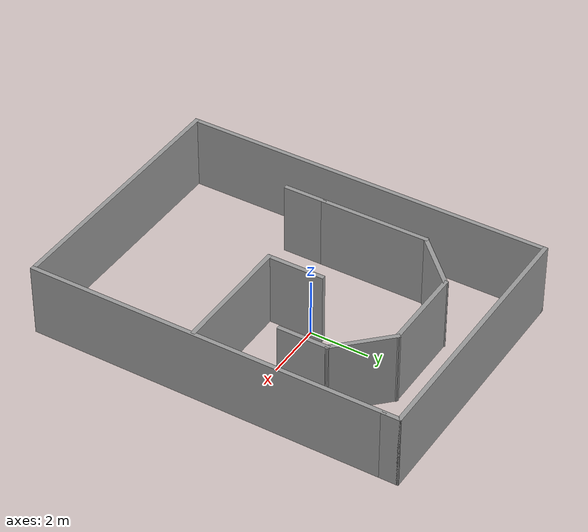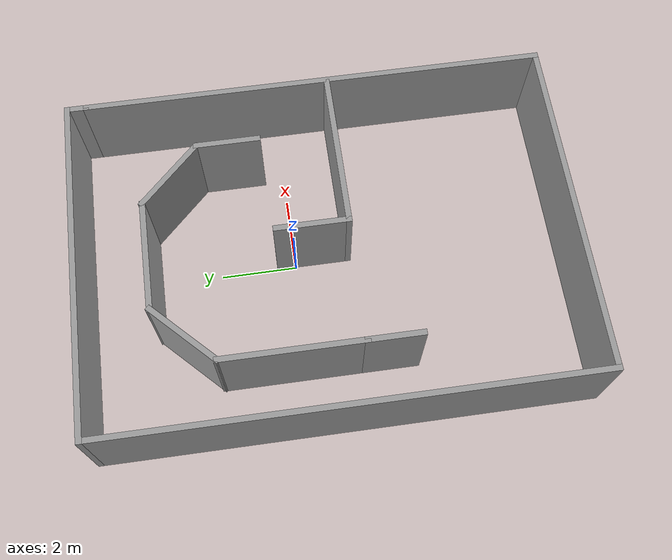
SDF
<?xml version='1.0'?>
<sdf version='1.6'>
  <model name='task_model'>
    <pose frame=''>-0.14442 -0.820435 0 0 -0 0</pose>
    <link name='Wall_21'>
      <collision name='Wall_21_Collision'>
        <geometry>
          <box>
            <size>12.75 0.15 2.5</size>
          </box>
        </geometry>
        <pose frame=''>0 0 1.25 0 -0 0</pose>
      </collision>
      <visual name='Wall_21_Visual'>
        <pose frame=''>0 0 1.25 0 -0 0</pose>
        <geometry>
          <box>
            <size>12.75 0.15 2.5</size>
          </box>
        </geometry>
        <material>
          <script>
            <uri>file://media/materials/scripts/gazebo.material</uri>
            <name>Gazebo/Grey</name>
          </script>
          <ambient>1 1 1 1</ambient>
        </material>
        <meta>
          <layer>0</layer>
        </meta>
      </visual>
      <pose frame=''>-4.425 -0 0 0 -0 -1.5708</pose>
    </link>
    <link name='Wall_22'>
      <collision name='Wall_22_Collision'>
        <geometry>
          <box>
            <size>9 0.15 2.5</size>
          </box>
        </geometry>
        <pose frame=''>0 0 1.25 0 -0 0</pose>
      </collision>
      <visual name='Wall_22_Visual'>
        <pose frame=''>0 0 1.25 0 -0 0</pose>
        <geometry>
          <box>
            <size>9 0.15 2.5</size>
          </box>
        </geometry>
        <material>
          <script>
            <uri>file://media/materials/scripts/gazebo.material</uri>
            <name>Gazebo/Grey</name>
          </script>
          <ambient>1 1 1 1</ambient>
        </material>
        <meta>
          <layer>0</layer>
        </meta>
      </visual>
      <pose frame=''>0 -6.3 0 0 -0 0</pose>
    </link>
    <link name='Wall_23'>
      <collision name='Wall_23_Collision'>
        <geometry>
          <box>
            <size>12.25 0.15 2.5</size>
          </box>
        </geometry>
        <pose frame=''>0 0 1.25 0 -0 0</pose>
      </collision>
      <visual name='Wall_23_Visual'>
        <pose frame=''>0 0 1.25 0 -0 0</pose>
        <geometry>
          <box>
            <size>12.25 0.15 2.5</size>
          </box>
        </geometry>
        <material>
          <script>
            <uri>file://media/materials/scripts/gazebo.material</uri>
            <name>Gazebo/Grey</name>
          </script>
          <ambient>1 1 1 1</ambient>
        </material>
        <meta>
          <layer>0</layer>
        </meta>
      </visual>
      <pose frame=''>4.425 -0.25 0 0 -0 1.5708</pose>
    </link>
    <link name='Wall_24'>
      <collision name='Wall_24_Collision'>
        <geometry>
          <box>
            <size>0.65 0.15 2.5</size>
          </box>
        </geometry>
        <pose frame=''>0 0 1.25 0 -0 0</pose>
      </collision>
      <visual name='Wall_24_Visual'>
        <pose frame=''>0 0 1.25 0 -0 0</pose>
        <geometry>
          <box>
            <size>0.65 0.15 2.5</size>
          </box>
        </geometry>
        <material>
          <script>
            <uri>file://media/materials/scripts/gazebo.material</uri>
            <name>Gazebo/Grey</name>
          </script>
          <ambient>1 1 1 1</ambient>
        </material>
        <meta>
          <layer>0</layer>
        </meta>
      </visual>
      <pose frame=''>4.425 6.05 0 0 -0 1.5708</pose>
    </link>
    <link name='Wall_26'>
      <collision name='Wall_26_Collision'>
        <geometry>
          <box>
            <size>3.75 0.15 2.5</size>
          </box>
        </geometry>
        <pose frame=''>0 0 1.25 0 -0 0</pose>
      </collision>
      <visual name='Wall_26_Visual'>
        <pose frame=''>0 0 1.25 0 -0 0</pose>
        <geometry>
          <box>
            <size>3.75 0.15 2.5</size>
          </box>
        </geometry>
        <material>
          <script>
            <uri>file://media/materials/scripts/gazebo.material</uri>
            <name>Gazebo/Grey</name>
          </script>
          <ambient>1 1 1 1</ambient>
        </material>
        <meta>
          <layer>0</layer>
        </meta>
      </visual>
      <pose frame=''>-2.93865 1.22324 0 0 -0 1.5708</pose>
    </link>
    <link name='Wall_27'>
      <collision name='Wall_27_Collision'>
        <geometry>
          <box>
            <size>2.25 0.15 2.5</size>
          </box>
        </geometry>
        <pose frame=''>0 0 1.25 0 -0 0</pose>
      </collision>
      <visual name='Wall_27_Visual'>
        <pose frame=''>0 0 1.25 0 -0 0</pose>
        <geometry>
          <box>
            <size>2.25 0.15 2.5</size>
          </box>
        </geometry>
        <material>
          <script>
            <uri>file://media/materials/scripts/gazebo.material</uri>
            <name>Gazebo/Grey</name>
          </script>
          <ambient>1 1 1 1</ambient>
        </material>
        <meta>
          <layer>0</layer>
        </meta>
      </visual>
      <pose frame=''>-2.19619 3.7657 0 0 -0 0.785398</pose>
    </link>
    <link name='Wall_28'>
      <collision name='Wall_28_Collision'>
        <geometry>
          <box>
            <size>3 0.15 2.5</size>
          </box>
        </geometry>
        <pose frame=''>0 0 1.25 0 -0 0</pose>
      </collision>
      <visual name='Wall_28_Visual'>
        <pose frame=''>0 0 1.25 0 -0 0</pose>
        <geometry>
          <box>
            <size>3 0.15 2.5</size>
          </box>
        </geometry>
        <material>
          <script>
            <uri>file://media/materials/scripts/gazebo.material</uri>
            <name>Gazebo/Grey</name>
          </script>
          <ambient>1 1 1 1</ambient>
        </material>
        <meta>
          <layer>0</layer>
        </meta>
      </visual>
      <pose frame=''>-0.028723 4.50816 0 0 -0 0</pose>
    </link>
    <link name='Wall_3'>
      <collision name='Wall_3_Collision'>
        <geometry>
          <box>
            <size>9 0.15 2.5</size>
          </box>
        </geometry>
        <pose frame=''>0 0 1.25 0 -0 0</pose>
      </collision>
      <visual name='Wall_3_Visual'>
        <pose frame=''>0 0 1.25 0 -0 0</pose>
        <geometry>
          <box>
            <size>9 0.15 2.5</size>
          </box>
        </geometry>
        <material>
          <script>
            <uri>file://media/materials/scripts/gazebo.material</uri>
            <name>Gazebo/Grey</name>
          </script>
          <ambient>1 1 1 1</ambient>
        </material>
        <meta>
          <layer>0</layer>
        </meta>
      </visual>
      <pose frame=''>0 6.3 0 0 -0 0</pose>
    </link>
    <link name='Wall_31'>
      <collision name='Wall_31_Collision'>
        <geometry>
          <box>
            <size>2.25 0.15 2.5</size>
          </box>
        </geometry>
        <pose frame=''>0 0 1.25 0 -0 0</pose>
      </collision>
      <visual name='Wall_31_Visual'>
        <pose frame=''>0 0 1.25 0 -0 0</pose>
        <geometry>
          <box>
            <size>2.25 0.15 2.5</size>
          </box>
        </geometry>
        <material>
          <script>
            <uri>file://media/materials/scripts/gazebo.material</uri>
            <name>Gazebo/Grey</name>
          </script>
          <ambient>1 1 1 1</ambient>
        </material>
        <meta>
          <layer>0</layer>
        </meta>
      </visual>
      <pose frame=''>2.13874 3.7657 0 0 -0 -0.785398</pose>
    </link>
    <link name='Wall_32'>
      <collision name='Wall_32_Collision'>
        <geometry>
          <box>
            <size>1.75 0.15 2.5</size>
          </box>
        </geometry>
        <pose frame=''>0 0 1.25 0 -0 0</pose>
      </collision>
      <visual name='Wall_32_Visual'>
        <pose frame=''>0 0 1.25 0 -0 0</pose>
        <geometry>
          <box>
            <size>1.75 0.15 2.5</size>
          </box>
        </geometry>
        <material>
          <script>
            <uri>file://media/materials/scripts/gazebo.material</uri>
            <name>Gazebo/Grey</name>
          </script>
          <ambient>1 1 1 1</ambient>
        </material>
        <meta>
          <layer>0</layer>
        </meta>
      </visual>
      <pose frame=''>2.8812 2.22324 0 0 -0 -1.5708</pose>
    </link>
    <link name='Wall_34'>
      <collision name='Wall_34_Collision'>
        <geometry>
          <box>
            <size>1.5 0.15 2.5</size>
          </box>
        </geometry>
        <pose frame=''>0 0 1.25 0 -0 0</pose>
      </collision>
      <visual name='Wall_34_Visual'>
        <pose frame=''>0 0 1.25 0 -0 0</pose>
        <geometry>
          <box>
            <size>1.5 0.15 2.5</size>
          </box>
        </geometry>
        <material>
          <script>
            <uri>file://media/materials/scripts/gazebo.material</uri>
            <name>Gazebo/Grey</name>
          </script>
          <ambient>1 1 1 1</ambient>
        </material>
        <meta>
          <layer>0</layer>
        </meta>
      </visual>
      <pose frame=''>-2.93865 -1.25176 0 0 -0 -1.5708</pose>
    </link>
    <link name='Wall_36'>
      <collision name='Wall_36_Collision'>
        <geometry>
          <box>
            <size>4.25 0.15 2.5</size>
          </box>
        </geometry>
        <pose frame=''>0 0 1.25 0 -0 0</pose>
      </collision>
      <visual name='Wall_36_Visual'>
        <pose frame=''>0 0 1.25 0 -0 0</pose>
        <geometry>
          <box>
            <size>4.25 0.15 2.5</size>
          </box>
        </geometry>
        <material>
          <script>
            <uri>file://media/materials/scripts/gazebo.material</uri>
            <name>Gazebo/Grey</name>
          </script>
          <ambient>1 1 1 1</ambient>
        </material>
        <meta>
          <layer>0</layer>
        </meta>
      </visual>
      <pose frame=''>2.3054 -0.59825 0 0 -0 3.14159</pose>
    </link>
    <link name='Wall_38'>
      <collision name='Wall_38_Collision'>
        <geometry>
          <box>
            <size>2 0.15 2.5</size>
          </box>
        </geometry>
        <pose frame=''>0 0 1.25 0 -0 0</pose>
      </collision>
      <visual name='Wall_38_Visual'>
        <pose frame=''>0 0 1.25 0 -0 0</pose>
        <geometry>
          <box>
            <size>2 0.15 2.5</size>
          </box>
        </geometry>
        <material>
          <script>
            <uri>file://media/materials/scripts/gazebo.material</uri>
            <name>Gazebo/Grey</name>
          </script>
          <ambient>1 1 1 1</ambient>
        </material>
        <meta>
          <layer>0</layer>
        </meta>
      </visual>
      <pose frame=''>0.255399 0.32675 0 0 -0 1.5708</pose>
    </link>
    <static>1</static>
  </model>
</sdf>
